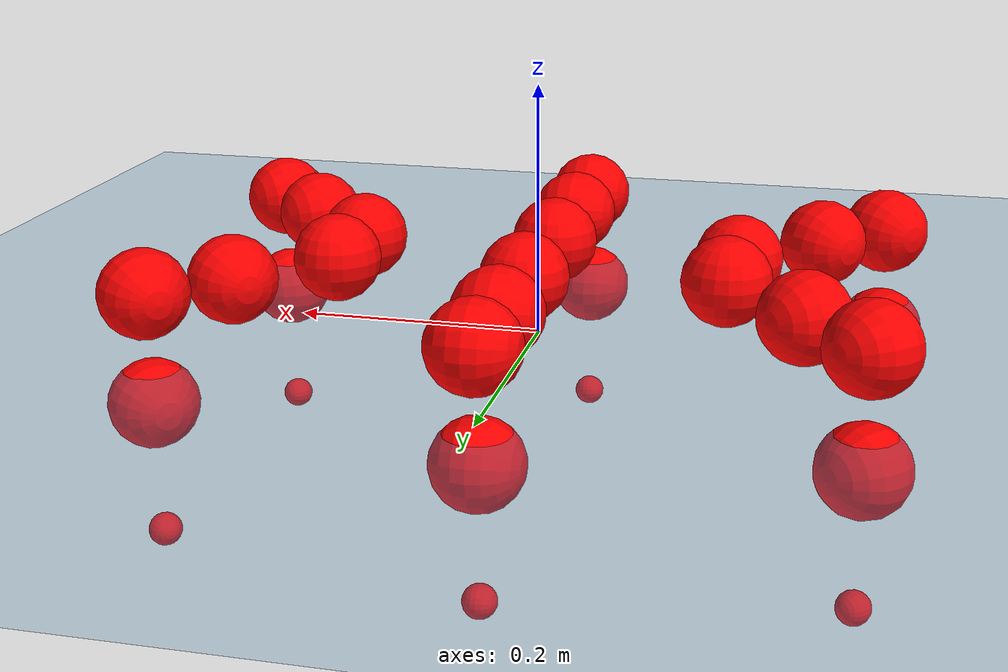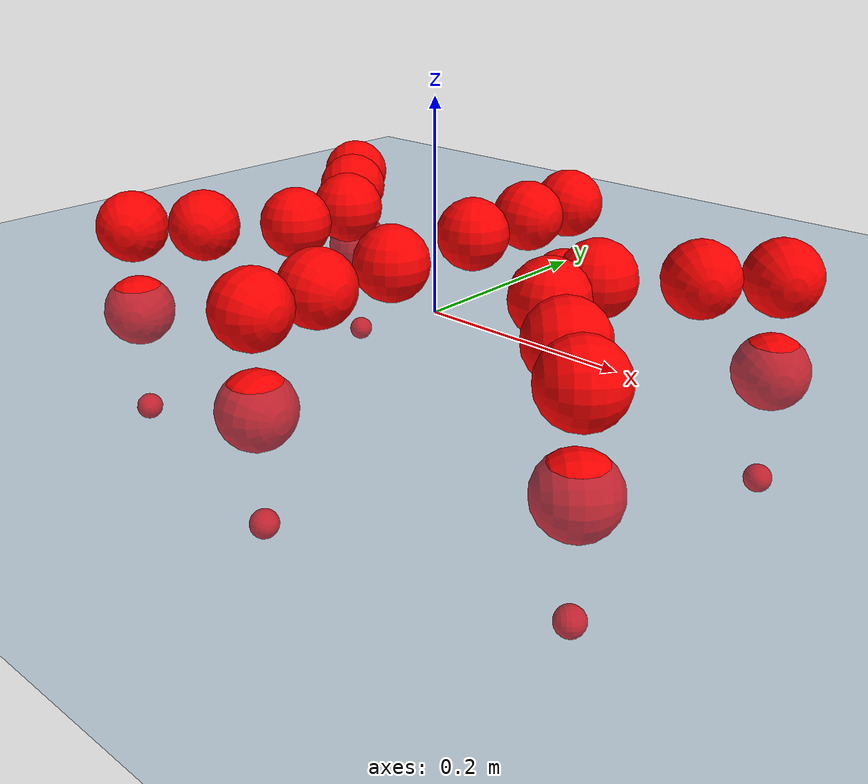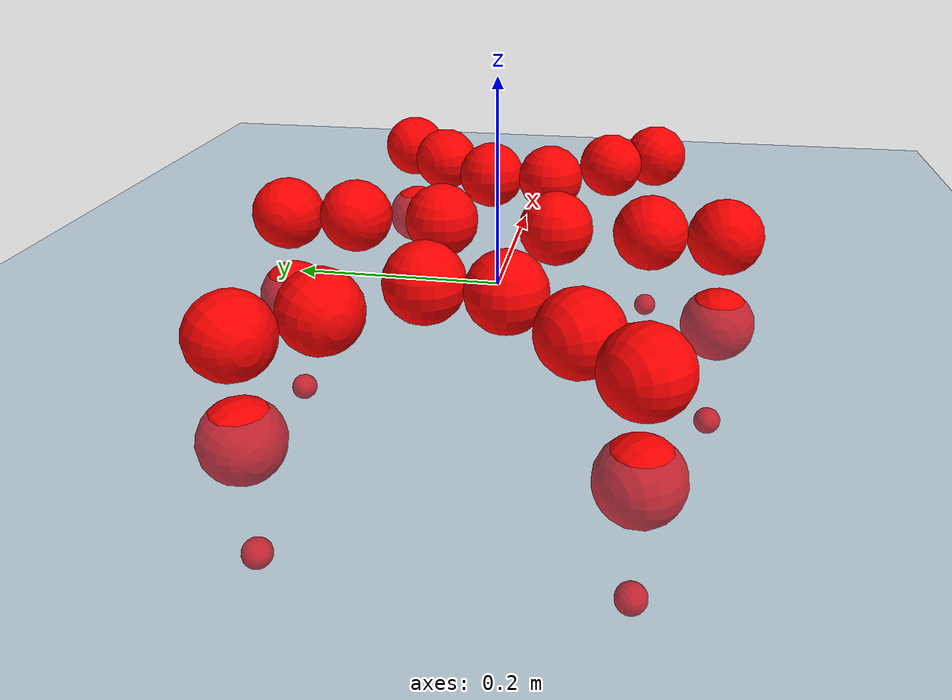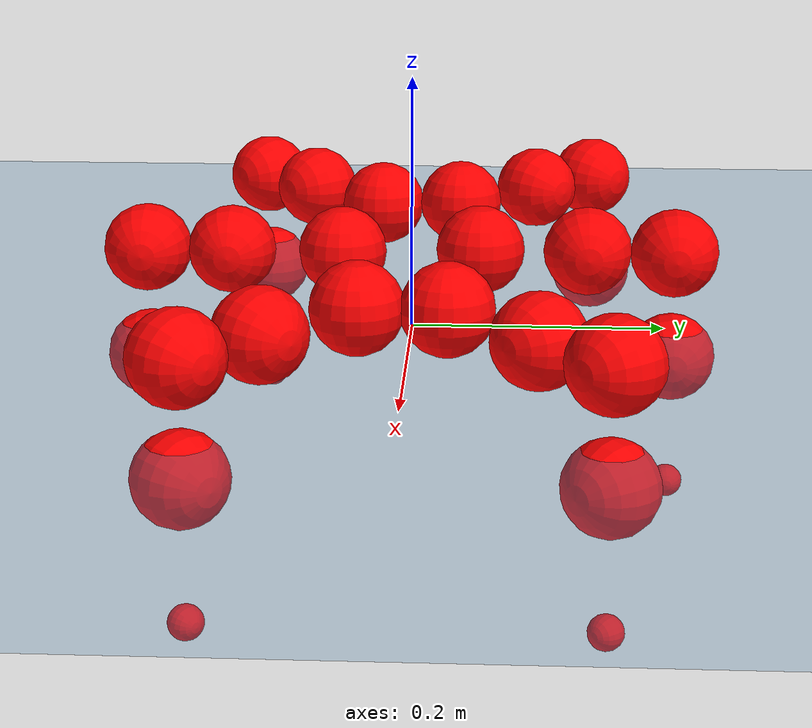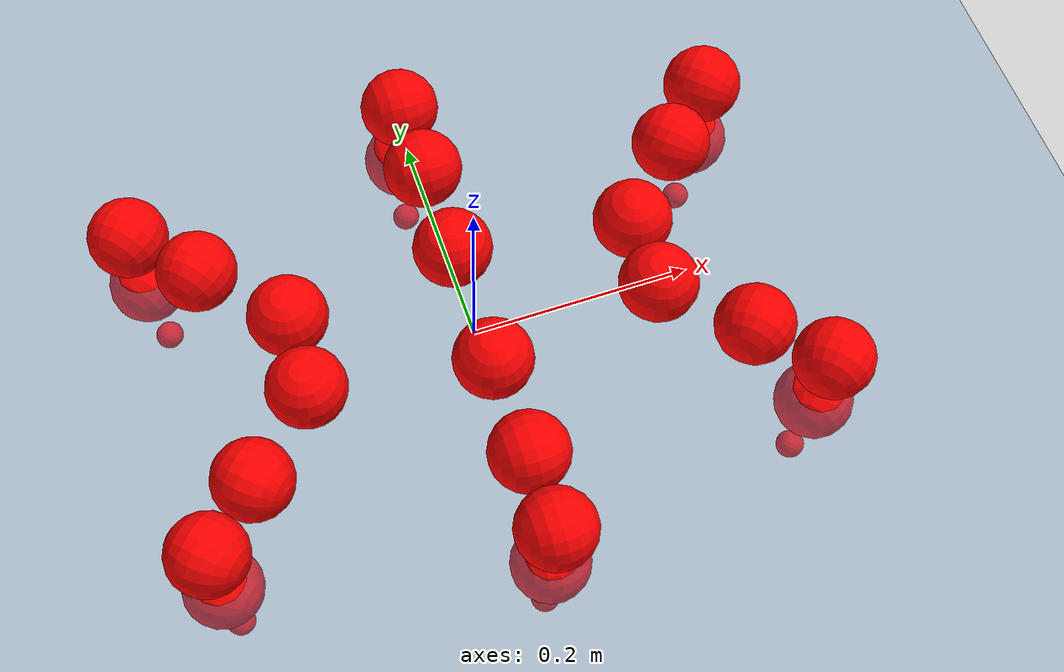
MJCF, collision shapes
<mujoco model="Golem">
  <compiler angle="radian" assetdir="assets" balanceinertia="true" inertiafromgeom="false"/>

  <option timestep="0.005" density="1.2" viscosity="2e-05"/>

  <size nkey="1"/>

  <visual>
    <quality shadowsize="8192"/>
    <map shadowclip="0.5"/>
  </visual>

  <default>
    <default class="/">
      <joint armature="0.01" damping="0.01" frictionloss="0.01"/>
      <geom contype="0" conaffinity="0" group="1" solref="-1000 -80"/>
      <site size="0.01 0.005 0.005" group="5"/>
      <general forcelimited="true" biastype="affine" gainprm="25" biasprm="0 -25 -0.5"/>
      <default class="visual">
        <geom type="mesh" group="2"/>
      </default>
      <default class="collision">
        <geom group="3"/>
      </default>
      <default class="foot">
        <geom size="0.01 0 0" condim="6" group="4" priority="1" solimp="0.015 1 0.01"/>
      </default>
      <default class="reward_collision_sphere">
        <geom group="5" rgba="1 0 0 1"/>
      </default>
    </default>
  </default>

  <asset>
    <texture type="skybox" colorspace="auto" name="//unnamed_texture_0" builtin="gradient" rgb1="0.95 0.95 0.95" rgb2="0.95 0.95 0.95" width="100" height="600"/>
    <texture type="2d" colorspace="auto" name="texplane" builtin="checker" rgb1="0.345 0.575 0.748" rgb2="0.345 0.575 0.748" markrgb="1 1 1" width="512" height="512"/>
    <material name="MatPlane" class="/" texture="texplane" texuniform="true" texrepeat="2 2" specular="0.9"/>
    <mesh name="body" class="/" file="body.stl" scale="0.001 0.001 0.001"/>
    <mesh name="coxa" class="/" file="coxa.stl" scale="0.001 0.001 0.001"/>
    <mesh name="femur" class="/" file="femur.stl" scale="0.001 0.001 0.001"/>
    <mesh name="tibia" class="/" file="tibia.stl" scale="0.001 0.001 0.001"/>
    <mesh name="tarsus" class="/" file="tarsus.stl" scale="0.001 0.001 0.001"/>
  </asset>

  <worldbody>
    <geom name="floor" class="/" size="100 100 0.125" type="plane" group="0" material="MatPlane"/>
    <light name="toplight_shadow" class="/" pos="0 0 5" dir="0.0990148 0.0990148 -0.990148" type="directional" ambient="0.04 0.04 0.04" diffuse="0.55 0.55 0.55" specular="0.12 0.12 0.12"/>
    <light name="toplight_fill" class="/" pos="0 0 5" dir="0.0990148 0.0990148 -0.990148" type="directional" castshadow="false" ambient="0.04 0.04 0.04" diffuse="0.3 0.3 0.3" specular="0.08 0.08 0.08"/>
    <body name="trunk" pos="4.62793e-05 0.000102073 -5.70969e-05" quat="1 -0.000451738 0.000486504 -0.000106264">
      <inertial pos="-7.34437e-05 0.00149213 -0.00225369" quat="0.999992 0.00311719 -0.00146302 0.0020591" mass="2.44965" diaginertia="0.00957351 0.00111848 0.00862597"/>
      <joint name="//unnamed_joint_0" type="free"/>
      <geom name="//unnamed_geom_1" class="/" pos="0 0 0.062269" quat="1 0 0 0" type="mesh" rgba="0.9 0.9 0.9 1" mesh="body"/>
      <site name="imu" class="/" pos="0.130363 0.00287889 0.101877" size="0.00870866"/>
      <camera name="track" class="/" pos="0 -1.29122 0" quat="0.707107 0.707107 0 0" mode="trackcom"/>
      <camera name="ego_camera" class="/" pos="0.129224 0 0.0972954" quat="-0.5 -0.5 0.5 0.5"/>
      <body name="coxa_RR" pos="-0.176928 -0.0537096 0.0616666" quat="0.382886 -0.00016289 0.000396176 -0.923796">
        <inertial pos="-0.000626151 -0.000829972 -0.000747341" quat="0.99996 -0.00178622 -0.0082948 -0.0026653" mass="0.136467" diaginertia="0.00984635 0.00112508 0.00889766"/>
        <joint name="coxa_joint_RR" class="/" pos="0 0 0" axis="-0.000498603 0.00146412 -0.999999" range="-3.14141 3.10341" armature="0.00943153" damping="0.00198844" frictionloss="0.00863856"/>
        <geom name="//unnamed_geom_2" class="/" type="mesh" rgba="0.2 0.2 0.2 1" mesh="coxa"/>
        <geom name="//unnamed_geom_3" class="reward_collision_sphere" size="0.0348346" pos="-0.029821 0 0"/>
        <body name="femur_RR" pos="0.0591786 0.00115278 -0.0010075" quat="0.500023 -0.500041 0.50007 0.499866">
          <inertial pos="0.0010731 -0.00101792 0.000322192" quat="0.999988 -0.000163432 0.00300275 0.00375199" mass="0.131618" diaginertia="0.00961518 0.00111241 0.00870424"/>
          <joint name="femur_joint_RR" class="/" pos="0 0 0" axis="-0.000686055 0.000900846 -0.999999" range="-3.15468 3.15002" armature="0.00877479" damping="0.00153954" frictionloss="0.0082957"/>
          <geom name="//unnamed_geom_4" class="/" type="mesh" rgba="0.9 0.9 0.9 1" mesh="femur"/>
          <geom name="//unnamed_geom_5" class="reward_collision_sphere" size="0.0348346"/>
          <body name="tibia_RR" pos="0.000647763 -0.0695298 -0.00038121" quat="-3.46022e-05 1 0.000277935 0.000142377">
            <inertial pos="1.01171e-05 0.000712943 -8.78556e-05" quat="0.999989 0.000726242 0.00467361 0.000744122" mass="0.134767" diaginertia="0.00957424 0.00111609 0.0087224"/>
            <joint name="tibia_joint_RR" class="/" pos="0 0 0" axis="-0.00174861 -0.00280789 0.999995" range="-3.12135 3.14471" armature="0.00874667" damping="0" frictionloss="0.00857971"/>
            <geom name="//unnamed_geom_6" class="/" type="mesh" rgba="0.2 0.2 0.2 1" mesh="tibia"/>
            <geom name="//unnamed_geom_7" class="reward_collision_sphere" size="0.0348346"/>
            <body name="tarsus_RR" pos="0.0870018 0.00118615 8.05277e-05" quat="1 -0.000264811 -0.000222161 8.77669e-05">
              <inertial pos="0.0613157 0.000463331 0.000772114" quat="0.500309 0.500011 0.499758 0.499921" mass="0.134146" diaginertia="0.00981185 0.00113644 0.00883583"/>
              <joint name="tarsus_joint_RR" class="/" pos="0 0 0" axis="-0.000340742 0.000150861 1" stiffness="0.00318242" range="-3.13495 3.13706" armature="0.00892" damping="0.0400394" frictionloss="0.00856839"/>
              <geom name="//unnamed_geom_8" class="/" type="mesh" rgba="0.9 0.9 0.9 1" mesh="tarsus"/>
              <geom name="foot_1" class="foot" size="0.00862633" pos="0.111332 0 0" quat="0 -0.707107 0 0.707107"/>
              <geom name="//unnamed_geom_10" class="reward_collision_sphere" size="0.0348346"/>
              <geom name="//unnamed_geom_11" class="reward_collision_sphere" size="0.013063" pos="0.106859 0 0"/>
              <site name="foot_1" class="foot" pos="0.111332 0 0" quat="0 -0.707107 0 0.707107" size="0.00870866"/>
            </body>
          </body>
        </body>
      </body>
      <body name="coxa_RM" pos="-0.00149308 -0.0852096 0.0609967" quat="0.707351 -0.000263887 4.32794e-05 -0.706862">
        <inertial pos="-0.000718651 0.000119753 0.000222256" quat="0.999999 -0.00057954 -0.00117443 -0.000775541" mass="0.134135" diaginertia="0.00996101 0.00112449 0.00880869"/>
        <joint name="coxa_joint_RM" class="/" pos="0 0 0" axis="0.000490978 -0.000733692 -1" range="-3.13393 3.13349" armature="0.00867276" damping="0.0070731" frictionloss="0.00882081"/>
        <geom name="//unnamed_geom_12" class="/" type="mesh" rgba="0.2 0.2 0.2 1" mesh="coxa"/>
        <geom name="//unnamed_geom_13" class="reward_collision_sphere" size="0.0348346" pos="-0.029821 0 0"/>
        <body name="femur_RM" pos="0.0580737 0.000920797 0.000381896" quat="0.499652 -0.500353 0.499991 0.500004">
          <inertial pos="0.000448252 0.000526009 -0.000886073" quat="0.99997 0.00749342 -0.00212953 0.000137677" mass="0.127627" diaginertia="0.00960357 0.00109414 0.00853253"/>
          <joint name="femur_joint_RM" class="/" pos="0 0 0" axis="-0.00112478 0.000928735 -0.999999" stiffness="0.000390528" range="-3.17296 3.14646" armature="0.0088088" damping="0.00925729" frictionloss="0.00872613"/>
          <geom name="//unnamed_geom_14" class="/" type="mesh" rgba="0.9 0.9 0.9 1" mesh="femur"/>
          <geom name="//unnamed_geom_15" class="reward_collision_sphere" size="0.0348346"/>
          <body name="tibia_RM" pos="-0.000197515 -0.0677528 -0.00117404" quat="8.46317e-05 1 -9.51467e-05 0.000791161">
            <inertial pos="0.000100529 -0.0006125 0.000326799" quat="1 0.000409628 0.000271749 -0.000468945" mass="0.132197" diaginertia="0.00968784 0.00110184 0.00848869"/>
            <joint name="tibia_joint_RM" class="/" pos="0 0 0" axis="0.00142677 0.000742863 0.999999" range="-3.14168 3.13662" armature="0.00849133" damping="0.00237339" frictionloss="0.00884013"/>
            <geom name="//unnamed_geom_16" class="/" type="mesh" rgba="0.2 0.2 0.2 1" mesh="tibia"/>
            <geom name="//unnamed_geom_17" class="reward_collision_sphere" size="0.0348346"/>
            <body name="tarsus_RM" pos="0.0879943 0.000305327 0.000526913" quat="1 0.000271174 0.000283267 -0.000276456">
              <inertial pos="0.0598673 0.000281006 7.69652e-05" quat="0.498538 0.503333 0.499497 0.498616" mass="0.132188" diaginertia="0.00963249 0.00112226 0.00856713"/>
              <joint name="tarsus_joint_RM" class="/" pos="0 0 0" axis="0.00321893 -0.00103583 0.999994" range="-3.13551 3.17265" armature="0.00903516" damping="0.00566937" frictionloss="0.00797037"/>
              <geom name="//unnamed_geom_18" class="/" type="mesh" rgba="0.9 0.9 0.9 1" mesh="tarsus"/>
              <geom name="foot_2" class="foot" size="0.00853856" pos="0.111332 0 0" quat="0 -0.707107 0 0.707107"/>
              <geom name="//unnamed_geom_20" class="reward_collision_sphere" size="0.0348346"/>
              <geom name="//unnamed_geom_21" class="reward_collision_sphere" size="0.013063" pos="0.106859 0 0"/>
              <site name="foot_2" class="foot" pos="0.111332 0 0" quat="0 -0.707107 0 0.707107" size="0.00870866"/>
            </body>
          </body>
        </body>
      </body>
      <body name="coxa_RF" pos="0.176024 -0.0534039 0.0615317" quat="0.923916 0.000363343 9.40601e-05 -0.382596">
        <inertial pos="0.00135664 0.00119033 0.000150751" quat="0.999999 0.000318047 -0.00078849 0.00123958" mass="0.133008" diaginertia="0.00972737 0.0011309 0.00870261"/>
        <joint name="coxa_joint_RF" class="/" pos="0 0 0" axis="0.000238462 0.000706574 -1" range="-3.15865 3.11308" armature="0.00912202" damping="0.00509168" frictionloss="0.00893635"/>
        <geom name="//unnamed_geom_22" class="/" type="mesh" rgba="0.2 0.2 0.2 1" mesh="coxa"/>
        <geom name="//unnamed_geom_23" class="reward_collision_sphere" size="0.0348346" pos="-0.029821 0 0"/>
        <body name="femur_RF" pos="0.0583309 0.000337174 -0.000694994" quat="0.50012 -0.499694 0.500037 0.500149">
          <inertial pos="0.000422774 0.000447982 0.00162573" quat="0.999994 -0.00279358 -0.000884936 -0.0015753" mass="0.128876" diaginertia="0.00954437 0.00110192 0.00842481"/>
          <joint name="femur_joint_RF" class="/" pos="0 0 0" axis="-0.0071901 0.00451379 -0.999964" range="-3.14694 3.15351" armature="0.00949181" damping="0.00979692" frictionloss="0.00876676"/>
          <geom name="//unnamed_geom_24" class="/" type="mesh" rgba="0.9 0.9 0.9 1" mesh="femur"/>
          <geom name="//unnamed_geom_25" class="reward_collision_sphere" size="0.0348346"/>
          <body name="tibia_RF" pos="0.000907971 -0.0705218 0.000356982" quat="-0.000459313 1 0.000221839 0.000119188">
            <inertial pos="0.000675569 1.96883e-05 0.000293096" quat="0.999999 0.0012191 0.000321007 -0.000497677" mass="0.13132" diaginertia="0.00972627 0.00111432 0.00888275"/>
            <joint name="tibia_joint_RF" class="/" pos="0 0 0" axis="-0.000357129 -0.000270221 1" range="-3.14179 3.16233" armature="0.00889156" damping="0.0109364" frictionloss="0.00836029"/>
            <geom name="//unnamed_geom_26" class="/" type="mesh" rgba="0.2 0.2 0.2 1" mesh="tibia"/>
            <geom name="//unnamed_geom_27" class="reward_collision_sphere" size="0.0348346"/>
            <body name="tarsus_RF" pos="0.086231 0.000409021 -0.000135416" quat="1 0.000482855 -0.000260636 0.000522371">
              <inertial pos="0.0587875 3.42079e-06 -0.000463421" quat="0.498785 0.499847 0.5018 0.499564" mass="0.132782" diaginertia="0.00979203 0.00112892 0.00868419"/>
              <joint name="tarsus_joint_RF" class="/" pos="0 0 0" axis="-0.00716943 -0.00462438 0.999964" stiffness="0.000255572" range="-3.14331 3.13688" armature="0.00875792" damping="0.00107556" frictionloss="0.00845318"/>
              <geom name="//unnamed_geom_28" class="/" type="mesh" rgba="0.9 0.9 0.9 1" mesh="tarsus"/>
              <geom name="foot_3" class="foot" size="0.00885462" pos="0.111332 0 0" quat="0 -0.707107 0 0.707107"/>
              <geom name="//unnamed_geom_30" class="reward_collision_sphere" size="0.0348346"/>
              <geom name="//unnamed_geom_31" class="reward_collision_sphere" size="0.013063" pos="0.106859 0 0"/>
              <site name="foot_3" class="foot" pos="0.111332 0 0" quat="0 -0.707107 0 0.707107" size="0.00870866"/>
            </body>
          </body>
        </body>
      </body>
      <body name="coxa_LR" pos="-0.174502 0.0557765 0.0641119" quat="0.382897 -0.000197912 -0.00030098 0.923791">
        <inertial pos="-0.000351192 -3.95953e-05 1.04556e-05" quat="0.999999 0.00152622 0.000348375 0.000290143" mass="0.133126" diaginertia="0.00958136 0.00112426 0.00850427"/>
        <joint name="coxa_joint_LR" class="/" pos="0 0 0" axis="0.00752741 -0.00145321 -0.999971" range="-3.12899 3.13867" armature="0.00915859" damping="0.00498639" frictionloss="0.00861695"/>
        <geom name="//unnamed_geom_32" class="/" type="mesh" rgba="0.2 0.2 0.2 1" mesh="coxa"/>
        <geom name="//unnamed_geom_33" class="reward_collision_sphere" size="0.0348346" pos="-0.029821 0 0"/>
        <body name="femur_LR" pos="0.0610454 -0.00226238 -0.00156773" quat="0.500136 -0.50031 0.499505 0.50005">
          <inertial pos="0.00015325 -0.000691449 -0.00110693" quat="0.999989 0.000882856 0.00426522 0.00188443" mass="0.130708" diaginertia="0.00959837 0.00113315 0.00865508"/>
          <joint name="femur_joint_LR" class="/" pos="0 0 0" axis="-0.00128457 0.000777798 0.999999" range="-3.16054 3.15756" armature="0.00863511" damping="0" frictionloss="0.00896178"/>
          <geom name="//unnamed_geom_34" class="/" type="mesh" rgba="0.9 0.9 0.9 1" mesh="femur"/>
          <geom name="//unnamed_geom_35" class="reward_collision_sphere" size="0.0348346"/>
          <body name="tibia_LR" pos="0.000709498 -0.0703117 -0.00186368" quat="-0.000178121 1 2.50222e-05 -2.27342e-05">
            <inertial pos="-0.00197983 0.000826052 -0.0010283" quat="0.999997 -0.000260309 -0.00153655 0.00184298" mass="0.132042" diaginertia="0.00961999 0.00112522 0.00870743"/>
            <joint name="tibia_joint_LR" class="/" pos="0 0 0" axis="-0.00106141 0.00147424 -0.999998" range="-3.11604 3.14404" armature="0.00908616" damping="0.00349705" frictionloss="0.00908522"/>
            <geom name="//unnamed_geom_36" class="/" type="mesh" rgba="0.2 0.2 0.2 1" mesh="tibia"/>
            <geom name="//unnamed_geom_37" class="reward_collision_sphere" size="0.0348346"/>
            <body name="tarsus_LR" pos="0.0889187 0.000855508 0.00124404" quat="1 2.70912e-05 6.9321e-07 -7.67921e-05">
              <inertial pos="0.0606118 0.000803149 -0.000381547" quat="0.499961 0.499822 0.5003 0.499917" mass="0.135252" diaginertia="0.00991345 0.00112996 0.00883178"/>
              <joint name="tarsus_joint_LR" class="/" pos="0 0 0" axis="0.0048982 -0.00683259 -0.999965" stiffness="0.00298469" range="-3.14797 3.13699" armature="0.00859562" damping="0.0291615" frictionloss="0.00878012"/>
              <geom name="//unnamed_geom_38" class="/" type="mesh" rgba="0.9 0.9 0.9 1" mesh="tarsus"/>
              <geom name="foot_4" class="foot" size="0.00836139" pos="0.111332 0 0" quat="0.707107 0 -0.707107 0"/>
              <geom name="//unnamed_geom_40" class="reward_collision_sphere" size="0.0348346"/>
              <geom name="//unnamed_geom_41" class="reward_collision_sphere" size="0.013063" pos="0.106859 0 0"/>
              <site name="foot_4" class="foot" pos="0.111332 0 0" quat="0.707107 0 -0.707107 0" size="0.00870866"/>
            </body>
          </body>
        </body>
      </body>
      <body name="coxa_LM" pos="-0.00160815 0.0837117 0.0630657" quat="0.707076 -0.000173441 0.00011798 0.707137">
        <inertial pos="0.00150216 0.00149572 -8.54805e-05" quat="1 -6.85307e-06 1.44059e-05 1.10159e-06" mass="0.132262" diaginertia="0.00964864 0.00112382 0.00874713"/>
        <joint name="coxa_joint_LM" class="/" pos="0 0 0" axis="-0.00168673 -0.0022818 -0.999996" range="-3.1501 3.15032" armature="0.00901079" damping="0.0076138" frictionloss="0.00842307"/>
        <geom name="//unnamed_geom_42" class="/" type="mesh" rgba="0.2 0.2 0.2 1" mesh="coxa"/>
        <geom name="//unnamed_geom_43" class="reward_collision_sphere" size="0.0348346" pos="-0.029821 0 0"/>
        <body name="femur_LM" pos="0.054735 0.000526436 -2.02345e-05" quat="0.500655 -0.499954 0.499988 0.499401">
          <inertial pos="0.000197907 -0.000745624 -0.000200937" quat="0.999999 0.000621844 -0.000911761 -0.000150806" mass="0.131547" diaginertia="0.00968573 0.00112078 0.00865718"/>
          <joint name="femur_joint_LM" class="/" pos="0 0 0" axis="0.00167255 8.9723e-05 0.999999" range="-3.15921 3.13867" armature="0.0080568" damping="0.00261083" frictionloss="0.00881028"/>
          <geom name="//unnamed_geom_44" class="/" type="mesh" rgba="0.9 0.9 0.9 1" mesh="femur"/>
          <geom name="//unnamed_geom_45" class="reward_collision_sphere" size="0.0348346"/>
          <body name="tibia_LM" pos="0.00106414 -0.068399 0.000689777" quat="1.02717e-06 1 3.4075e-05 -6.87184e-06">
            <inertial pos="-0.00100351 -0.00103687 -0.000936801" quat="0.999992 0.000643607 0.00377301 0.00127065" mass="0.130774" diaginertia="0.00969254 0.00113648 0.00891472"/>
            <joint name="tibia_joint_LM" class="/" pos="0 0 0" axis="-0.000290932 0.00057123 -1" range="-3.12387 3.13938" armature="0.00879025" damping="0" frictionloss="0.00895983"/>
            <geom name="//unnamed_geom_46" class="/" type="mesh" rgba="0.2 0.2 0.2 1" mesh="tibia"/>
            <geom name="//unnamed_geom_47" class="reward_collision_sphere" size="0.0348346"/>
            <body name="tarsus_LM" pos="0.0862233 0.000262968 -0.00174432" quat="1 4.42313e-05 2.71311e-05 0.000165331">
              <inertial pos="0.0603577 -0.000637034 -4.65266e-05" quat="0.49907 0.497916 0.503339 0.499659" mass="0.136268" diaginertia="0.00969968 0.00114116 0.00873112"/>
              <joint name="tarsus_joint_LM" class="/" pos="0 0 0" axis="0.00260262 -0.00759789 -0.999968" stiffness="0.00150217" range="-3.1407 3.14441" armature="0.00884473" damping="0.00940343" frictionloss="0.00868461"/>
              <geom name="//unnamed_geom_48" class="/" type="mesh" rgba="0.9 0.9 0.9 1" mesh="tarsus"/>
              <geom name="foot_5" class="foot" size="0.00842937" pos="0.111332 0 0" quat="0.707107 0 -0.707107 0"/>
              <geom name="//unnamed_geom_50" class="reward_collision_sphere" size="0.0348346"/>
              <geom name="//unnamed_geom_51" class="reward_collision_sphere" size="0.013063" pos="0.106859 0 0"/>
              <site name="foot_5" class="foot" pos="0.111332 0 0" quat="0.707107 0 -0.707107 0" size="0.00870866"/>
            </body>
          </body>
        </body>
      </body>
      <body name="coxa_LF" pos="0.177042 0.0538206 0.0617874" quat="0.923889 2.29073e-06 0.00010641 0.382661">
        <inertial pos="0.00014696 -0.000225986 0.000407649" quat="1 7.3531e-05 0.000266354 0.000116772" mass="0.12991" diaginertia="0.0096335 0.00111554 0.0086621"/>
        <joint name="coxa_joint_LF" class="/" pos="0 0 0" axis="4.71427e-06 -0.00109857 -0.999999" range="-3.13142 3.15776" armature="0.00854738" damping="0.00326688" frictionloss="0.0086617"/>
        <geom name="//unnamed_geom_52" class="/" type="mesh" rgba="0.2 0.2 0.2 1" mesh="coxa"/>
        <geom name="//unnamed_geom_53" class="reward_collision_sphere" size="0.0348346" pos="-0.029821 0 0"/>
        <body name="femur_LF" pos="0.0593405 0.0021406 -0.00235829" quat="0.500033 -0.500276 0.499951 0.49974">
          <inertial pos="-0.000725179 -0.000911604 0.000409041" quat="0.999999 -0.000930557 -0.00111615 0.000302434" mass="0.13332" diaginertia="0.00966596 0.00112974 0.00879697"/>
          <joint name="femur_joint_LF" class="/" pos="0 0 0" axis="0.00571228 0.000211541 0.999984" range="-3.13994 3.11881" armature="0.00855883" damping="0" frictionloss="0.00871877"/>
          <geom name="//unnamed_geom_54" class="/" type="mesh" rgba="0.9 0.9 0.9 1" mesh="femur"/>
          <geom name="//unnamed_geom_55" class="reward_collision_sphere" size="0.0348346"/>
          <body name="tibia_LF" pos="-0.000503682 -0.0700885 -0.000331676" quat="-1.09403e-05 1 -2.76847e-06 -9.4616e-06">
            <inertial pos="-0.000700047 -0.000914077 0.000508059" quat="0.999985 0.00477181 0.00048897 0.00254075" mass="0.13152" diaginertia="0.00971006 0.00110474 0.00864102"/>
            <joint name="tibia_joint_LF" class="/" pos="0 0 0" axis="0.00135142 0.0045058 -0.999989" range="-3.14664 3.1554" armature="0.00795841" damping="0.00300106" frictionloss="0.00877479"/>
            <geom name="//unnamed_geom_56" class="/" type="mesh" rgba="0.2 0.2 0.2 1" mesh="tibia"/>
            <geom name="//unnamed_geom_57" class="reward_collision_sphere" size="0.0348346"/>
            <body name="tarsus_LF" pos="0.0873769 -0.000663486 -0.000183905" quat="1 -0.000719996 0.000274175 -0.00046007">
              <inertial pos="0.0601593 -0.000513811 0.000300866" quat="0.500106 0.500259 0.499798 0.499836" mass="0.131833" diaginertia="0.00973973 0.00111779 0.00865835"/>
              <joint name="tarsus_joint_LF" class="/" pos="0 0 0" axis="1.06183e-05 0.00533493 -0.999986" range="-3.12516 3.14854" armature="0.00889409" damping="0.0108923" frictionloss="0.00884887"/>
              <geom name="//unnamed_geom_58" class="/" type="mesh" rgba="0.9 0.9 0.9 1" mesh="tarsus"/>
              <geom name="foot_6" class="foot" size="0.00851089" pos="0.111332 0 0" quat="0.707107 0 -0.707107 0"/>
              <geom name="//unnamed_geom_60" class="reward_collision_sphere" size="0.0348346"/>
              <geom name="//unnamed_geom_61" class="reward_collision_sphere" size="0.013063" pos="0.106859 0 0"/>
              <site name="foot_6" class="foot" pos="0.111332 0 0" quat="0.707107 0 -0.707107 0" size="0.00870866"/>
            </body>
          </body>
        </body>
      </body>
    </body>
  </worldbody>

  <contact>
    <pair class="/" geom1="floor" geom2="foot_1" name="//unnamed_contact_0"/>
    <pair class="/" geom1="floor" geom2="foot_2" name="//unnamed_contact_1"/>
    <pair class="/" geom1="floor" geom2="foot_3" name="//unnamed_contact_2"/>
    <pair class="/" geom1="floor" geom2="foot_4" name="//unnamed_contact_3"/>
    <pair class="/" geom1="floor" geom2="foot_5" name="//unnamed_contact_4"/>
    <pair class="/" geom1="floor" geom2="foot_6" name="//unnamed_contact_5"/>
  </contact>

  <actuator>
    <general name="coxa_joint_RR" class="/" joint="coxa_joint_RR" forcerange="-6.46012 6.46012" gainprm="20.7045" biasprm="0 -20.7045 -0.453199"/>
    <general name="femur_joint_RR" class="/" joint="femur_joint_RR" forcerange="-6.35743 6.35743" gainprm="20.7045" biasprm="0 -20.7045 -0.453199"/>
    <general name="tibia_joint_RR" class="/" joint="tibia_joint_RR" forcerange="-6.31511 6.31511" gainprm="20.7045" biasprm="0 -20.7045 -0.453199"/>
    <general name="tarsus_joint_RR" class="/" joint="tarsus_joint_RR" forcerange="-6.4516 6.4516" gainprm="20.7045" biasprm="0 -20.7045 -0.453199"/>
    <general name="coxa_joint_RM" class="/" joint="coxa_joint_RM" forcerange="-6.50057 6.50057" gainprm="20.7045" biasprm="0 -20.7045 -0.453199"/>
    <general name="femur_joint_RM" class="/" joint="femur_joint_RM" forcerange="-6.30138 6.30138" gainprm="20.7045" biasprm="0 -20.7045 -0.453199"/>
    <general name="tibia_joint_RM" class="/" joint="tibia_joint_RM" forcerange="-6.34913 6.34913" gainprm="20.7045" biasprm="0 -20.7045 -0.453199"/>
    <general name="tarsus_joint_RM" class="/" joint="tarsus_joint_RM" forcerange="-6.16061 6.16061" gainprm="20.7045" biasprm="0 -20.7045 -0.453199"/>
    <general name="coxa_joint_RF" class="/" joint="coxa_joint_RF" forcerange="-6.24099 6.24099" gainprm="20.7045" biasprm="0 -20.7045 -0.453199"/>
    <general name="femur_joint_RF" class="/" joint="femur_joint_RF" forcerange="-6.35186 6.35186" gainprm="20.7045" biasprm="0 -20.7045 -0.453199"/>
    <general name="tibia_joint_RF" class="/" joint="tibia_joint_RF" forcerange="-6.32432 6.32432" gainprm="20.7045" biasprm="0 -20.7045 -0.453199"/>
    <general name="tarsus_joint_RF" class="/" joint="tarsus_joint_RF" forcerange="-6.12644 6.12644" gainprm="20.7045" biasprm="0 -20.7045 -0.453199"/>
    <general name="coxa_joint_LR" class="/" joint="coxa_joint_LR" forcerange="-6.2397 6.2397" gainprm="20.7045" biasprm="0 -20.7045 -0.453199"/>
    <general name="femur_joint_LR" class="/" joint="femur_joint_LR" forcerange="-6.55666 6.55666" gainprm="20.7045" biasprm="0 -20.7045 -0.453199"/>
    <general name="tibia_joint_LR" class="/" joint="tibia_joint_LR" forcerange="-6.05479 6.05479" gainprm="20.7045" biasprm="0 -20.7045 -0.453199"/>
    <general name="tarsus_joint_LR" class="/" joint="tarsus_joint_LR" forcerange="-6.7216 6.7216" gainprm="20.7045" biasprm="0 -20.7045 -0.453199"/>
    <general name="coxa_joint_LM" class="/" joint="coxa_joint_LM" forcerange="-6.14251 6.14251" gainprm="20.7045" biasprm="0 -20.7045 -0.453199"/>
    <general name="femur_joint_LM" class="/" joint="femur_joint_LM" forcerange="-6.40153 6.40153" gainprm="20.7045" biasprm="0 -20.7045 -0.453199"/>
    <general name="tibia_joint_LM" class="/" joint="tibia_joint_LM" forcerange="-6.39502 6.39502" gainprm="20.7045" biasprm="0 -20.7045 -0.453199"/>
    <general name="tarsus_joint_LM" class="/" joint="tarsus_joint_LM" forcerange="-6.58282 6.58282" gainprm="20.7045" biasprm="0 -20.7045 -0.453199"/>
    <general name="coxa_joint_LF" class="/" joint="coxa_joint_LF" forcerange="-6.37828 6.37828" gainprm="20.7045" biasprm="0 -20.7045 -0.453199"/>
    <general name="femur_joint_LF" class="/" joint="femur_joint_LF" forcerange="-6.36344 6.36344" gainprm="20.7045" biasprm="0 -20.7045 -0.453199"/>
    <general name="tibia_joint_LF" class="/" joint="tibia_joint_LF" forcerange="-6.16302 6.16302" gainprm="20.7045" biasprm="0 -20.7045 -0.453199"/>
    <general name="tarsus_joint_LF" class="/" joint="tarsus_joint_LF" forcerange="-6.25774 6.25774" gainprm="20.7045" biasprm="0 -20.7045 -0.453199"/>
  </actuator>

  <sensor>
    <gyro site="imu" name="imu_angular_velocity"/>
    <velocimeter site="imu" name="imu_linear_velocity"/>
    <framelinvel objtype="site" objname="foot_1" name="foot_1_global_linear_velocity"/>
    <framelinvel objtype="site" objname="foot_2" name="foot_2_global_linear_velocity"/>
    <framelinvel objtype="site" objname="foot_3" name="foot_3_global_linear_velocity"/>
    <framelinvel objtype="site" objname="foot_4" name="foot_4_global_linear_velocity"/>
    <framelinvel objtype="site" objname="foot_5" name="foot_5_global_linear_velocity"/>
    <framelinvel objtype="site" objname="foot_6" name="foot_6_global_linear_velocity"/>
  </sensor>

  <keyframe>
    <key name="home" qpos="0 0 0.1457 1 0 0 0 0 0 0 0 0 0 0 0 0 0 0 0 0 0 0 0 0 0 0 0 0 0 0 0"/>
  </keyframe>
</mujoco>
